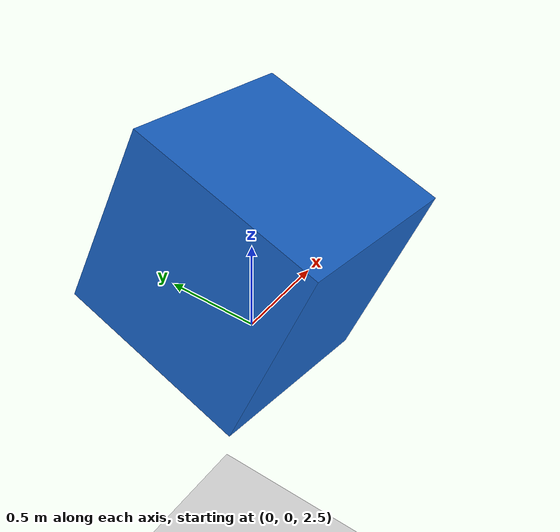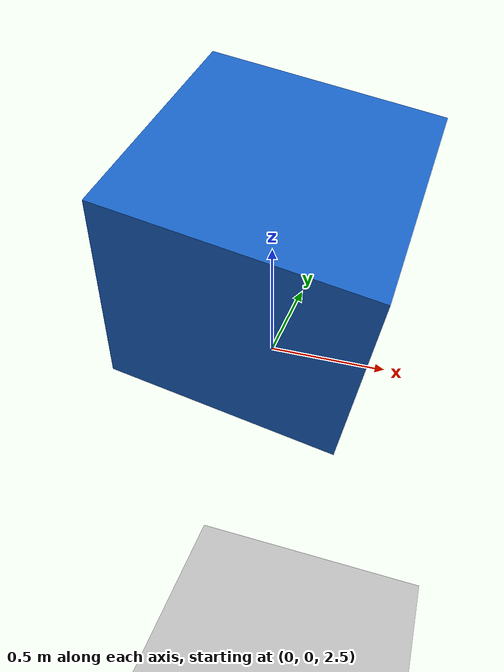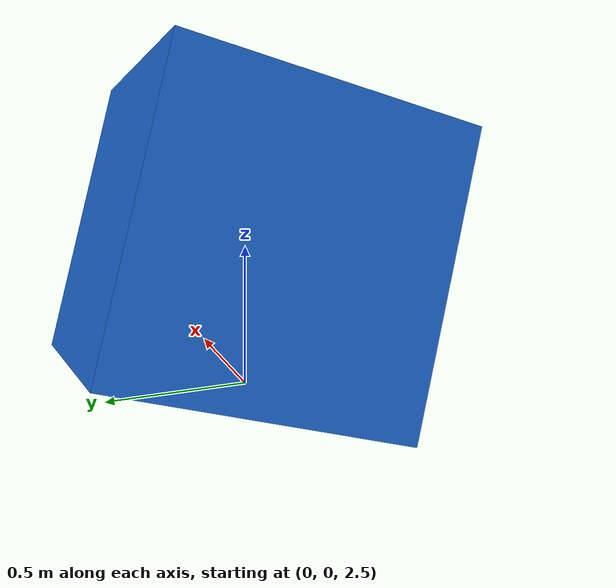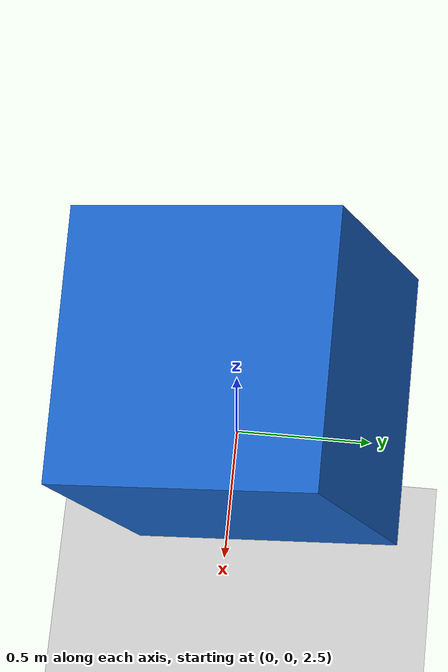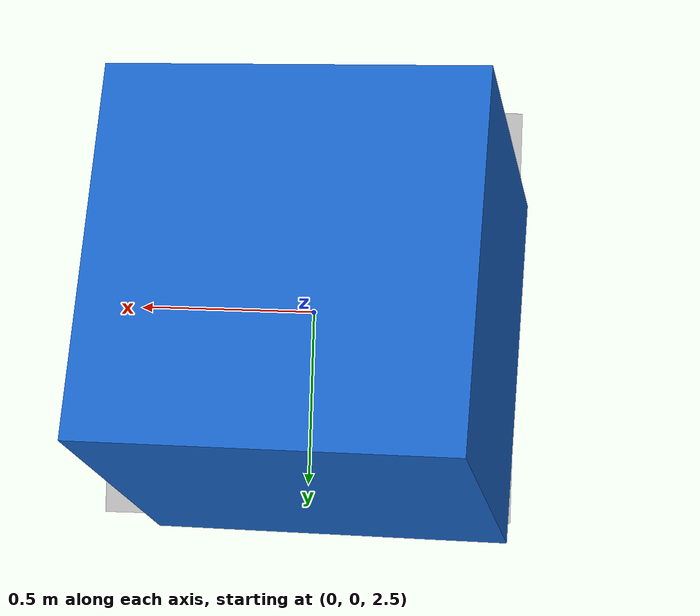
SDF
<?xml version="1.0" ?>
<!--
  Minimal world for the sim-time bridge demonstration.
  A box drops onto the ground plane so progress is visible in the GUI.
  Gazebo publishes gz.msgs.Clock on /clock and /world/clock_demo/clock.
-->
<sdf version="1.9">
  <world name="clock_demo">
    <physics name="1ms" type="ignored">
      <max_step_size>0.001</max_step_size>
      <real_time_factor>1.0</real_time_factor>
    </physics>
    <plugin filename="gz-sim-physics-system" name="gz::sim::systems::Physics"/>
    <plugin filename="gz-sim-scene-broadcaster-system" name="gz::sim::systems::SceneBroadcaster"/>
    <plugin filename="gz-sim-user-commands-system" name="gz::sim::systems::UserCommands"/>

    <light type="directional" name="sun">
      <cast_shadows>false</cast_shadows>
      <pose>0 0 10 0 0 0</pose>
      <diffuse>0.8 0.8 0.8 1</diffuse>
      <specular>0.2 0.2 0.2 1</specular>
      <direction>-0.5 0.1 -0.9</direction>
    </light>

    <model name="ground_plane">
      <static>true</static>
      <link name="link">
        <collision name="collision">
          <geometry><plane><normal>0 0 1</normal><size>20 20</size></plane></geometry>
        </collision>
        <visual name="visual">
          <geometry><plane><normal>0 0 1</normal><size>20 20</size></plane></geometry>
          <material>
            <ambient>0.8 0.8 0.8 1</ambient>
            <diffuse>0.8 0.8 0.8 1</diffuse>
          </material>
        </visual>
      </link>
    </model>

    <model name="box">
      <pose>0 0 3 0.3 0.2 0</pose>
      <link name="link">
        <inertial>
          <mass>1.0</mass>
          <inertia><ixx>0.1667</ixx><iyy>0.1667</iyy><izz>0.1667</izz></inertia>
        </inertial>
        <collision name="collision">
          <geometry><box><size>1 1 1</size></box></geometry>
        </collision>
        <visual name="visual">
          <geometry><box><size>1 1 1</size></box></geometry>
          <material>
            <ambient>0.1 0.4 0.8 1</ambient>
            <diffuse>0.1 0.4 0.8 1</diffuse>
          </material>
        </visual>
      </link>
    </model>
  </world>
</sdf>
